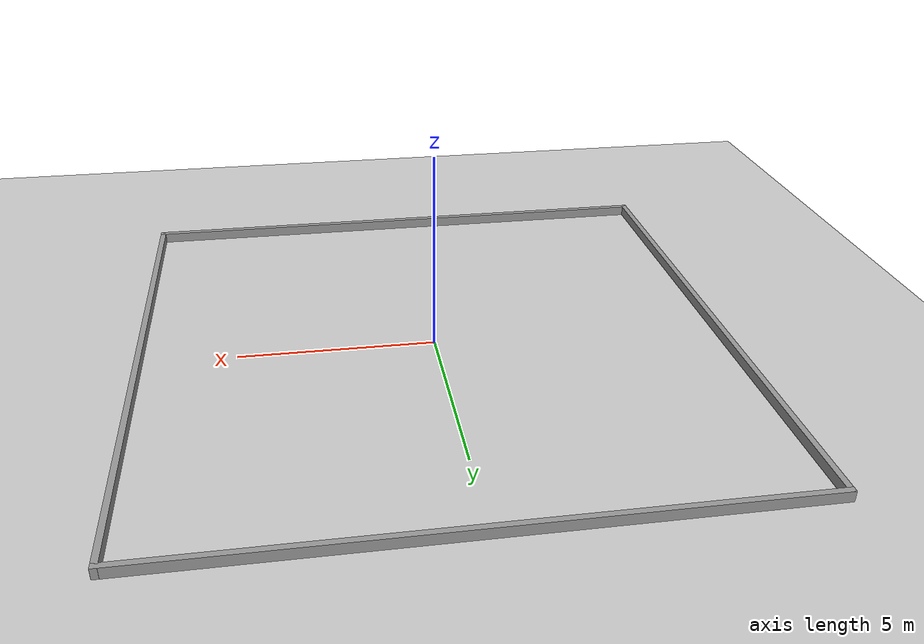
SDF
<?xml version="1.6" ?>
<sdf version="1.6">
  <world name="default">
    <include>
        <uri>model://ground_plane</uri>
    </include>

    <include>
        <uri>model://sun</uri>
    </include>

    <scene>
      <shadows>0</shadows>
    </scene>
    <model name='wall_ht_0'>
      <pose frame=''>0 0 0 0 -0 0</pose>
      <link name='Wall_0'>
        <collision name='Wall_0_Collision'>
          <geometry>
            <box>
              <size>15 0.15 0.5</size>
            </box>
          </geometry>
          <pose frame=''>0 0 0 0 -0 0</pose>
          <max_contacts>10</max_contacts>
          <surface>
            <contact>
              <ode/>
            </contact>
            <bounce/>
            <friction>
              <torsional>
                <ode/>
              </torsional>
              <ode/>
            </friction>
          </surface>
        </collision>
        <visual name='Wall_0_Visual'>
          <pose frame=''>0 0 0 0 -0 0</pose>
          <geometry>
            <box>
              <size>15 0.15 0.5</size>
            </box>
          </geometry>
          <material>
            <script>
              <uri>file://media/materials/scripts/gazebo.material</uri>
              <name>Gazebo/Grey</name>
            </script>
            <ambient>1 1 1 1</ambient>
          </material>
        </visual>
        <pose frame=''>0 7.425 0 0 -0 3.14159</pose>
        <self_collide>0</self_collide>
        <kinematic>0</kinematic>
        <gravity>1</gravity>
      </link>
      <link name='Wall_1'>
        <collision name='Wall_1_Collision'>
          <geometry>
            <box>
              <size>15 0.15 0.5</size>
            </box>
          </geometry>
          <pose frame=''>0 0 0 0 -0 0</pose>
          <max_contacts>10</max_contacts>
          <surface>
            <contact>
              <ode/>
            </contact>
            <bounce/>
            <friction>
              <torsional>
                <ode/>
              </torsional>
              <ode/>
            </friction>
          </surface>
        </collision>
        <visual name='Wall_1_Visual'>
          <pose frame=''>0 0 0 0 -0 0</pose>
          <geometry>
            <box>
              <size>15 0.15 0.5</size>
            </box>
          </geometry>
          <material>
            <script>
              <uri>file://media/materials/scripts/gazebo.material</uri>
              <name>Gazebo/Grey</name>
            </script>
            <ambient>1 1 1 1</ambient>
          </material>
        </visual>
        <pose frame=''>-7.425 0 0 0 0 -1.5708</pose>
        <self_collide>0</self_collide>
        <kinematic>0</kinematic>
        <gravity>1</gravity>
      </link>
      <link name='Wall_2'>
        <collision name='Wall_2_Collision'>
          <geometry>
            <box>
              <size>15 0.15 0.5</size>
            </box>
          </geometry>
          <pose frame=''>0 0 0 0 -0 0</pose>
          <max_contacts>10</max_contacts>
          <surface>
            <contact>
              <ode/>
            </contact>
            <bounce/>
            <friction>
              <torsional>
                <ode/>
              </torsional>
              <ode/>
            </friction>
          </surface>
        </collision>
        <visual name='Wall_2_Visual'>
          <pose frame=''>0 0 0 0 -0 0</pose>
          <geometry>
            <box>
              <size>15 0.15 0.5</size>
            </box>
          </geometry>
          <material>
            <script>
              <uri>file://media/materials/scripts/gazebo.material</uri>
              <name>Gazebo/Grey</name>
            </script>
            <ambient>1 1 1 1</ambient>
          </material>
        </visual>
        <pose frame=''>0 -7.425 0 0 -0 0</pose>
        <self_collide>0</self_collide>
        <kinematic>0</kinematic>
        <gravity>1</gravity>
      </link>
      <link name='Wall_3'>
        <collision name='Wall_3_Collision'>
          <geometry>
            <box>
              <size>15 0.15 0.5</size>
            </box>
          </geometry>
          <pose frame=''>0 0 0 0 -0 0</pose>
          <max_contacts>10</max_contacts>
          <surface>
            <contact>
              <ode/>
            </contact>
            <bounce/>
            <friction>
              <torsional>
                <ode/>
              </torsional>
              <ode/>
            </friction>
          </surface>
        </collision>
        <visual name='Wall_3_Visual'>
          <pose frame=''>0 0 0 0 -0 0</pose>
          <geometry>
            <box>
              <size>15 0.15 0.5</size>
            </box>
          </geometry>
          <material>
            <script>
              <uri>file://media/materials/scripts/gazebo.material</uri>
              <name>Gazebo/Grey</name>
            </script>
            <ambient>1 1 1 1</ambient>
          </material>
        </visual>
        <pose frame=''>7.425 0 0 0 -0 1.5708</pose>
        <self_collide>0</self_collide>
        <kinematic>0</kinematic>
        <gravity>1</gravity>
      </link>
      <static>1</static>
    </model>
  </world>
</sdf>
